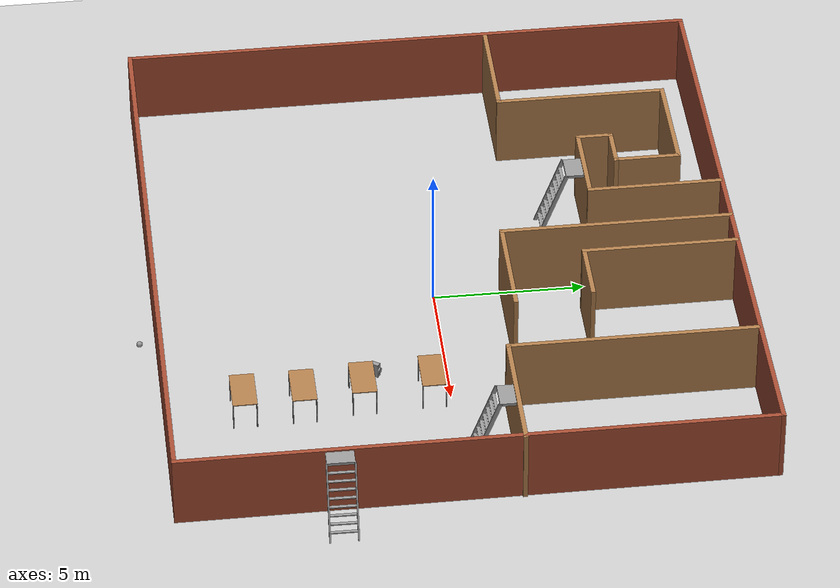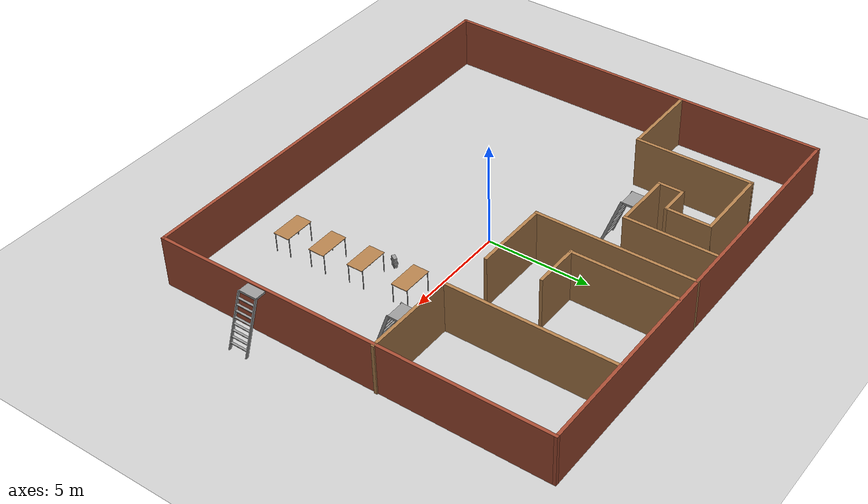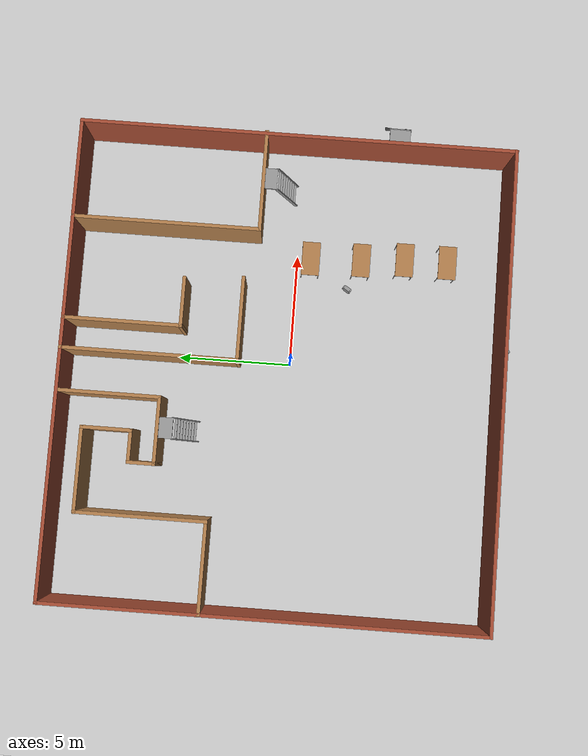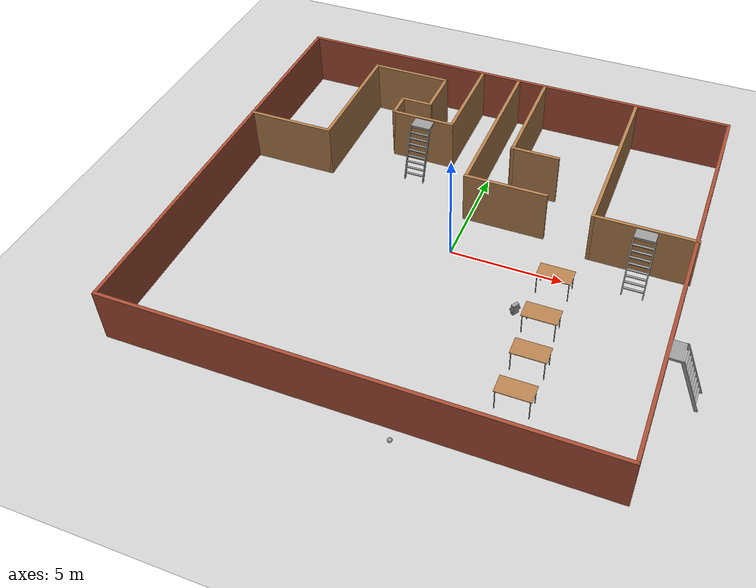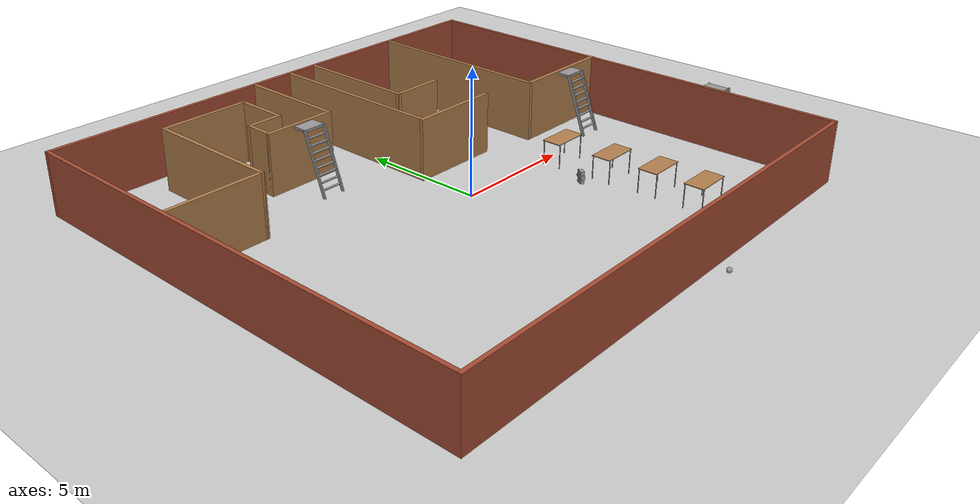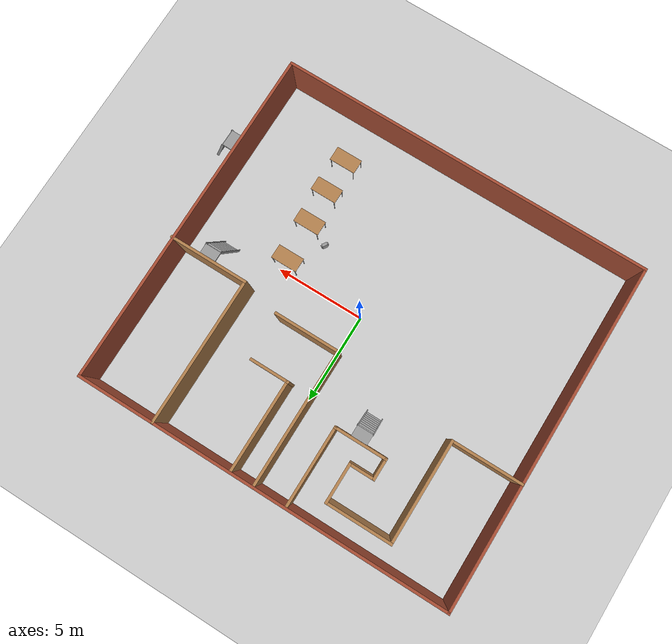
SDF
<sdf version="1.6">
 <world name="default">
  <light name="sun" type="directional">
   <pose>0 0 10 0 -0 0</pose>
   <diffuse>0.8 0.8 0.8 1</diffuse>
   <specular>0.2 0.2 0.2 1</specular>
   <attenuation>
    <range>1000</range>
    <constant>0.9</constant>
    <linear>0.01</linear>
    <quadratic>0.001</quadratic>
   </attenuation>
   <direction>-0.5 0.1 -0.9</direction>
  </light>
  <model name="ground_plane">
   <static>1</static>
   <link name="link">
    <collision name="collision">
     <geometry><plane><normal>0 0 1</normal><size>100 100</size></plane></geometry>
     <surface><friction><ode><mu>100</mu><mu2>50</mu2></ode></friction></surface>
    </collision>
    <visual name="visual">
     <cast_shadows>0</cast_shadows>
     <geometry><plane><normal>0 0 1</normal><size>100 100</size></plane></geometry>
     <material>
      <script><uri>file://media/materials/scripts/gazebo.material</uri><name>Gazebo/Grey</name></script>
     </material>
    </visual>
   </link>
  </model>
  <gravity>0 0 -9.8</gravity>
  <magnetic_field>6e-06 2.3e-05 -4.2e-05</magnetic_field>
  <atmosphere type="adiabatic"/>
  <physics name="default_physics" default="0" type="ode">
   <max_step_size>0.001</max_step_size>
   <real_time_factor>1</real_time_factor>
   <real_time_update_rate>1000</real_time_update_rate>
  </physics>
  <scene><ambient>0.4 0.4 0.4 1</ambient><background>0.7 0.7 0.7 1</background><shadows>1</shadows></scene>
  <audio><device>default</device></audio>
  <spherical_coordinates>
   <surface_model>EARTH_WGS84</surface_model>
   <latitude_deg>0</latitude_deg>
   <longitude_deg>0</longitude_deg>
   <elevation>0</elevation>
   <heading_deg>0</heading_deg>
  </spherical_coordinates>
  <model name="tiny_car">
   <link name="link_0">
    <inertial>
     <mass>1</mass>
     <inertia>
      <ixx>0.166667</ixx>
      <ixy>0</ixy>
      <ixz>0</ixz>
      <iyy>0.166667</iyy>
      <iyz>0</iyz>
      <izz>0.166667</izz>
     </inertia>
    </inertial>
    <pose>0.006667 1e-06 0 0 -0 0</pose>
    <visual name="visual">
     <geometry><box><size>0.5 0.3 0.16</size></box></geometry>
     <material>
      <lighting>1</lighting>
      <script><uri>file://media/materials/scripts/gazebo.material</uri><name>Gazebo/Grey</name></script>
      <shader type="vertex"><normal_map>__default__</normal_map></shader>
      <ambient>0.3 0.3 0.3 1</ambient>
      <diffuse>0.7 0.7 0.7 1</diffuse>
      <specular>0.01 0.01 0.01 1</specular>
      <emissive>0 0 0 1</emissive>
     </material>
    </visual>
    <collision name="collision">
     <geometry><box><size>0.5 0.3 0.16</size></box></geometry>
     <surface>
      <friction>
       <ode><mu>1</mu><mu2>1</mu2><fdir1>0 0 0</fdir1><slip1>0</slip1><slip2>0</slip2></ode>
       <torsional>
        <coefficient>1</coefficient>
        <patch_radius>0</patch_radius>
        <surface_radius>0</surface_radius>
        <use_patch_radius>1</use_patch_radius>
        <ode><slip>0</slip></ode>
       </torsional>
      </friction>
      <bounce><restitution_coefficient>0</restitution_coefficient><threshold>1e+06</threshold></bounce>
      <contact>
       <collide_without_contact>0</collide_without_contact>
       <collide_without_contact_bitmask>1</collide_without_contact_bitmask>
       <collide_bitmask>1</collide_bitmask>
       <ode>
        <soft_cfm>0</soft_cfm>
        <soft_erp>0.2</soft_erp>
        <kp>1e+13</kp>
        <kd>1</kd>
        <max_vel>0.01</max_vel>
        <min_depth>0</min_depth>
       </ode>
       <bullet>
        <split_impulse>1</split_impulse>
        <split_impulse_penetration_threshold>-0.01</split_impulse_penetration_threshold>
        <soft_cfm>0</soft_cfm>
        <soft_erp>0.2</soft_erp>
        <kp>1e+13</kp>
        <kd>1</kd>
       </bullet>
      </contact>
     </surface>
    </collision>
   </link>
   <link name="link_1">
    <inertial>
     <mass>1</mass>
     <inertia><ixx>0.145833</ixx><ixy>0</ixy><ixz>0</ixz><iyy>0.145833</iyy><iyz>0</iyz><izz>0.125</izz></inertia>
    </inertial>
    <pose>-0.013333 -0.175012 0 1.5707 -0 0</pose>
    <visual name="visual">
     <geometry><cylinder><radius>0.1</radius><length>0.05</length></cylinder></geometry>
     <material>
      <lighting>1</lighting>
      <script><uri>file://media/materials/scripts/gazebo.material</uri><name>Gazebo/Grey</name></script>
      <shader type="vertex"><normal_map>__default__</normal_map></shader>
      <ambient>0.3 0.3 0.3 1</ambient>
      <diffuse>0.7 0.7 0.7 1</diffuse>
      <specular>0.01 0.01 0.01 1</specular>
      <emissive>0 0 0 1</emissive>
     </material>
    </visual>
    <collision name="collision">
     <geometry><cylinder><radius>0.1</radius><length>0.05</length></cylinder></geometry>
     <surface>
      <friction>
       <ode><mu>1</mu><mu2>1</mu2><fdir1>0 0 0</fdir1><slip1>0</slip1><slip2>0</slip2></ode>
       <torsional>
        <coefficient>1</coefficient>
        <patch_radius>0</patch_radius>
        <surface_radius>0</surface_radius>
        <use_patch_radius>1</use_patch_radius>
        <ode><slip>0</slip></ode>
       </torsional>
      </friction>
      <bounce><restitution_coefficient>0</restitution_coefficient><threshold>1e+06</threshold></bounce>
      <contact>
       <collide_without_contact>0</collide_without_contact>
       <collide_without_contact_bitmask>1</collide_without_contact_bitmask>
       <collide_bitmask>1</collide_bitmask>
       <ode>
        <soft_cfm>0</soft_cfm>
        <soft_erp>0.2</soft_erp>
        <kp>1e+13</kp>
        <kd>1</kd>
        <max_vel>0.01</max_vel>
        <min_depth>0</min_depth>
       </ode>
       <bullet>
        <split_impulse>1</split_impulse>
        <split_impulse_penetration_threshold>-0.01</split_impulse_penetration_threshold>
        <soft_cfm>0</soft_cfm>
        <soft_erp>0.2</soft_erp>
        <kp>1e+13</kp>
        <kd>1</kd>
       </bullet>
      </contact>
     </surface>
    </collision>
   </link>
   <link name="link_1_clone">
    <inertial>
     <mass>1</mass>
     <inertia><ixx>0.145833</ixx><ixy>0</ixy><ixz>0</ixz><iyy>0.145833</iyy><iyz>0</iyz><izz>0.125</izz></inertia>
    </inertial>
    <pose>0.006667 0.175011 0 1.5707 -0 0</pose>
    <visual name="visual">
     <geometry><cylinder><radius>0.1</radius><length>0.05</length></cylinder></geometry>
     <material>
      <lighting>1</lighting>
      <script><uri>file://media/materials/scripts/gazebo.material</uri><name>Gazebo/Grey</name></script>
      <shader type="vertex"><normal_map>__default__</normal_map></shader>
      <ambient>0.3 0.3 0.3 1</ambient>
      <diffuse>0.7 0.7 0.7 1</diffuse>
      <specular>0.01 0.01 0.01 1</specular>
      <emissive>0 0 0 1</emissive>
     </material>
    </visual>
    <collision name="collision">
     <geometry><cylinder><radius>0.1</radius><length>0.05</length></cylinder></geometry>
     <surface>
      <friction>
       <ode><mu>1</mu><mu2>1</mu2><fdir1>0 0 0</fdir1><slip1>0</slip1><slip2>0</slip2></ode>
       <torsional>
        <coefficient>1</coefficient>
        <patch_radius>0</patch_radius>
        <surface_radius>0</surface_radius>
        <use_patch_radius>1</use_patch_radius>
        <ode><slip>0</slip></ode>
       </torsional>
      </friction>
      <bounce><restitution_coefficient>0</restitution_coefficient><threshold>1e+06</threshold></bounce>
      <contact>
       <collide_without_contact>0</collide_without_contact>
       <collide_without_contact_bitmask>1</collide_without_contact_bitmask>
       <collide_bitmask>1</collide_bitmask>
       <ode>
        <soft_cfm>0</soft_cfm>
        <soft_erp>0.2</soft_erp>
        <kp>1e+13</kp>
        <kd>1</kd>
        <max_vel>0.01</max_vel>
        <min_depth>0</min_depth>
       </ode>
       <bullet>
        <split_impulse>1</split_impulse>
        <split_impulse_penetration_threshold>-0.01</split_impulse_penetration_threshold>
        <soft_cfm>0</soft_cfm>
        <soft_erp>0.2</soft_erp>
        <kp>1e+13</kp>
        <kd>1</kd>
       </bullet>
      </contact>
     </surface>
    </collision>
   </link>
   <joint name="link_0_JOINT_1" type="revolute">
    <parent>link_0</parent>
    <child>link_1</child>
    <axis>
     <xyz>1 0 0</xyz>
     <use_parent_model_frame>0</use_parent_model_frame>
     <limit>
      <lower>-1.79769e+308</lower>
      <upper>1.79769e+308</upper>
      <effort>-1</effort>
      <velocity>-1</velocity>
     </limit>
     <dynamics>
      <spring_reference>0</spring_reference>
      <spring_stiffness>0</spring_stiffness>
      <damping>0</damping>
     </dynamics>
    </axis>
    <physics>
     <ode><limit><cfm>0</cfm><erp>0.2</erp></limit><suspension><cfm>0</cfm><erp>0.2</erp></suspension></ode>
    </physics>
   </joint>
   <joint name="link_0_JOINT_2" type="revolute">
    <parent>link_0</parent>
    <child>link_1_clone</child>
    <axis>
     <xyz>1 0 0</xyz>
     <use_parent_model_frame>0</use_parent_model_frame>
     <limit>
      <lower>-1.79769e+308</lower>
      <upper>1.79769e+308</upper>
      <effort>-1</effort>
      <velocity>-1</velocity>
     </limit>
     <dynamics>
      <spring_reference>0</spring_reference>
      <spring_stiffness>0</spring_stiffness>
      <damping>0</damping>
     </dynamics>
    </axis>
    <physics>
     <ode><limit><cfm>0</cfm><erp>0.2</erp></limit><suspension><cfm>0</cfm><erp>0.2</erp></suspension></ode>
    </physics>
   </joint>
   <static>0</static>
   <pose>3.65014 -2.32547 0.256667 1.48283 1.57079 0.922437</pose>
  </model>
  <model name="no-door-office">
   <pose>-0.50993 0.33776 0 0 -0 0</pose>
   <link name="Wall_10">
    <collision name="Wall_10_Collision">
     <geometry><box><size>3.75 0.15 2.5</size></box></geometry>
     <pose>0 0 1.25 0 -0 0</pose>
    </collision>
    <visual name="Wall_10_Visual">
     <pose>0 0 1.25 0 -0 0</pose>
     <geometry><box><size>3.75 0.15 2.5</size></box></geometry>
     <material>
      <script><uri>file://media/materials/scripts/gazebo.material</uri><name>Gazebo/Wood</name></script>
      <ambient>1 1 1 1</ambient>
     </material>
     <meta><layer>0</layer></meta>
    </visual>
    <pose>-4.7877 8.31382 0 0 -0 0</pose>
   </link>
   <link name="Wall_11">
    <collision name="Wall_11_Collision">
     <geometry><box><size>2.25 0.15 2.5</size></box></geometry>
     <pose>0 0 1.25 0 -0 0</pose>
    </collision>
    <visual name="Wall_11_Visual">
     <pose>0 0 1.25 0 -0 0</pose>
     <geometry><box><size>2.25 0.15 2.5</size></box></geometry>
     <material>
      <script><uri>file://media/materials/scripts/gazebo.material</uri><name>Gazebo/Wood</name></script>
      <ambient>1 1 1 1</ambient>
     </material>
     <meta><layer>0</layer></meta>
    </visual>
    <pose>-2.9877 7.26382 0 0 -0 -1.5708</pose>
   </link>
   <link name="Wall_12">
    <collision name="Wall_12_Collision">
     <geometry><box><size>1.5 0.15 2.5</size></box></geometry>
     <pose>0 0 1.25 0 -0 0</pose>
    </collision>
    <visual name="Wall_12_Visual">
     <pose>0 0 1.25 0 -0 0</pose>
     <geometry><box><size>1.5 0.15 2.5</size></box></geometry>
     <material>
      <script><uri>file://media/materials/scripts/gazebo.material</uri><name>Gazebo/Wood</name></script>
      <ambient>1 1 1 1</ambient>
     </material>
     <meta><layer>0</layer></meta>
    </visual>
    <pose>-3.6627 6.21382 0 0 -0 3.14159</pose>
   </link>
   <link name="Wall_13">
    <collision name="Wall_13_Collision">
     <geometry><box><size>1.25 0.15 2.5</size></box></geometry>
     <pose>0 0 1.25 0 -0 0</pose>
    </collision>
    <visual name="Wall_13_Visual">
     <pose>0 0 1.25 0 -0 0</pose>
     <geometry><box><size>1.25 0.15 2.5</size></box></geometry>
     <material>
      <script><uri>file://media/materials/scripts/gazebo.material</uri><name>Gazebo/Wood</name></script>
      <ambient>1 1 1 1</ambient>
     </material>
     <meta><layer>0</layer></meta>
    </visual>
    <pose>-4.3377 5.66382 0 0 -0 -1.5708</pose>
   </link>
   <link name="Wall_14">
    <collision name="Wall_14_Collision">
     <geometry><box><size>3 0.15 2.5</size></box></geometry>
     <pose>0 0 1.25 0 -0 0</pose>
    </collision>
    <visual name="Wall_14_Visual">
     <pose>0 0 1.25 0 -0 0</pose>
     <geometry><box><size>3 0.15 2.5</size></box></geometry>
     <material>
      <script><uri>file://media/materials/scripts/gazebo.material</uri><name>Gazebo/Wood</name></script>
      <ambient>1 1 1 1</ambient>
     </material>
     <meta><layer>0</layer></meta>
    </visual>
    <pose>-2.9127 5.11382 0 0 -0 0</pose>
   </link>
   <link name="Wall_15">
    <collision name="Wall_15_Collision">
     <geometry><box><size>4.5 0.15 2.5</size></box></geometry>
     <pose>0 0 1.25 0 -0 0</pose>
    </collision>
    <visual name="Wall_15_Visual">
     <pose>0 0 1.25 0 -0 0</pose>
     <geometry><box><size>4.5 0.15 2.5</size></box></geometry>
     <material>
      <script><uri>file://media/materials/scripts/gazebo.material</uri><name>Gazebo/Wood</name></script>
      <ambient>1 1 1 1</ambient>
     </material>
     <meta><layer>0</layer></meta>
    </visual>
    <pose>-1.4877 7.28882 0 0 -0 1.5708</pose>
   </link>
   <link name="Wall_17">
    <collision name="Wall_17_Collision">
     <geometry><box><size>7.75 0.15 2.5</size></box></geometry>
     <pose>0 0 1.25 0 -0 0</pose>
    </collision>
    <visual name="Wall_17_Visual">
     <pose>0 0 1.25 0 -0 0</pose>
     <geometry><box><size>7.75 0.15 2.5</size></box></geometry>
     <material>
      <script><uri>file://media/materials/scripts/gazebo.material</uri><name>Gazebo/Wood</name></script>
      <ambient>1 1 1 1</ambient>
     </material>
     <meta><layer>0</layer></meta>
    </visual>
    <pose>0.347156 5.75023 0 0 -0 -1.5708</pose>
   </link>
   <link name="Wall_18">
    <collision name="Wall_18_Collision">
     <geometry><box><size>3.75 0.15 2.5</size></box></geometry>
     <pose>0 0 1.25 0 -0 0</pose>
    </collision>
    <visual name="Wall_18_Visual">
     <pose>0 0 1.25 0 -0 0</pose>
     <geometry><box><size>3.75 0.15 2.5</size></box></geometry>
     <material>
      <script><uri>file://media/materials/scripts/gazebo.material</uri><name>Gazebo/Wood</name></script>
      <ambient>1 1 1 1</ambient>
     </material>
     <meta><layer>0</layer></meta>
    </visual>
    <pose>2.13846 1.94153 0 0 -0 0</pose>
   </link>
   <link name="Wall_20">
    <collision name="Wall_20_Collision">
     <geometry><box><size>2.25 0.15 2.5</size></box></geometry>
     <pose>0 0 1.25 0 -0 0</pose>
    </collision>
    <visual name="Wall_20_Visual">
     <pose>0 0 1.25 0 -0 0</pose>
     <geometry><box><size>2.25 0.15 2.5</size></box></geometry>
     <material>
      <script><uri>file://media/materials/scripts/gazebo.material</uri><name>Gazebo/Wood</name></script>
      <ambient>1 1 1 1</ambient>
     </material>
     <meta><layer>0</layer></meta>
    </visual>
    <pose>2.68176 4.48397 0 0 -0 3.14159</pose>
   </link>
   <link name="Wall_21">
    <collision name="Wall_21_Collision">
     <geometry><box><size>5.16191 0.15 2.5</size></box></geometry>
     <pose>0 0 1.25 0 -0 0</pose>
    </collision>
    <visual name="Wall_21_Visual">
     <pose>0 0 1.25 0 -0 0</pose>
     <geometry><box><size>5.16191 0.15 2.5</size></box></geometry>
     <material>
      <script><uri>file://media/materials/scripts/gazebo.material</uri><name>Gazebo/Wood</name></script>
      <ambient>1 1 1 1</ambient>
     </material>
     <meta><layer>0</layer></meta>
    </visual>
    <pose>1.65489 6.98992 0 0 -0 1.5708</pose>
   </link>
   <link name="Wall_23">
    <collision name="Wall_23_Collision">
     <geometry><box><size>8.25 0.15 2.5</size></box></geometry>
     <pose>0 0 1.25 0 -0 0</pose>
    </collision>
    <visual name="Wall_23_Visual">
     <pose>0 0 1.25 0 -0 0</pose>
     <geometry><box><size>8.25 0.15 2.5</size></box></geometry>
     <material>
      <script><uri>file://media/materials/scripts/gazebo.material</uri><name>Gazebo/Wood</name></script>
      <ambient>1 1 1 1</ambient>
     </material>
     <meta><layer>0</layer></meta>
    </visual>
    <pose>6.1082 5.46862 0 0 -0 -1.5708</pose>
   </link>
   <link name="Wall_24">
    <collision name="Wall_24_Collision">
     <geometry><box><size>4.5 0.15 2.5</size></box></geometry>
     <pose>0 0 1.25 0 -0 0</pose>
    </collision>
    <visual name="Wall_24_Visual">
     <pose>0 0 1.25 0 -0 0</pose>
     <geometry><box><size>4.5 0.15 2.5</size></box></geometry>
     <material>
      <script><uri>file://media/materials/scripts/gazebo.material</uri><name>Gazebo/Wood</name></script>
      <ambient>1 1 1 1</ambient>
     </material>
     <meta><layer>0</layer></meta>
    </visual>
    <pose>8.2832 1.41862 0 0 -0 0</pose>
   </link>
   <link name="Wall_3">
    <collision name="Wall_3_Collision">
     <geometry><box><size>19.25 0.15 2.5</size></box></geometry>
     <pose>0 0 1.25 0 -0 0</pose>
    </collision>
    <visual name="Wall_3_Visual">
     <pose>0 0 1.25 0 -0 0</pose>
     <geometry><box><size>19.25 0.15 2.5</size></box></geometry>
     <material>
      <script><uri>file://media/materials/scripts/gazebo.material</uri><name>Gazebo/Bricks</name></script>
      <ambient>1 1 1 1</ambient>
     </material>
     <meta><layer>0</layer></meta>
    </visual>
    <pose>-10.4582 -0.000226 0 0 -0 -1.5708</pose>
   </link>
   <link name="Wall_4">
    <collision name="Wall_4_Collision">
     <geometry><box><size>21 0.15 2.5</size></box></geometry>
     <pose>0 0 1.25 0 -0 0</pose>
    </collision>
    <visual name="Wall_4_Visual">
     <pose>0 0 1.25 0 -0 0</pose>
     <geometry><box><size>21 0.15 2.5</size></box></geometry>
     <material>
      <script><uri>file://media/materials/scripts/gazebo.material</uri><name>Gazebo/Bricks</name></script>
      <ambient>1 1 1 1</ambient>
     </material>
     <meta><layer>0</layer></meta>
    </visual>
    <pose>-0.033201 -9.55023 0 0 -0 0</pose>
   </link>
   <link name="Wall_5">
    <collision name="Wall_5_Collision">
     <geometry><box><size>19.25 0.15 2.5</size></box></geometry>
     <pose>0 0 1.25 0 -0 0</pose>
    </collision>
    <visual name="Wall_5_Visual">
     <pose>0 0 1.25 0 -0 0</pose>
     <geometry><box><size>19.25 0.15 2.5</size></box></geometry>
     <material>
      <script><uri>file://media/materials/scripts/gazebo.material</uri><name>Gazebo/Bricks</name></script>
      <ambient>1 1 1 1</ambient>
     </material>
     <meta><layer>0</layer></meta>
    </visual>
    <pose>10.3918 -0.000226 0 0 -0 1.5708</pose>
   </link>
   <link name="Wall_6">
    <collision name="Wall_6_Collision">
     <geometry><box><size>21 0.15 2.5</size></box></geometry>
     <pose>0 0 1.25 0 -0 0</pose>
    </collision>
    <visual name="Wall_6_Visual">
     <pose>0 0 1.25 0 -0 0</pose>
     <geometry><box><size>21 0.15 2.5</size></box></geometry>
     <material>
      <script><uri>file://media/materials/scripts/gazebo.material</uri><name>Gazebo/Bricks</name></script>
      <ambient>1 1 1 1</ambient>
     </material>
     <meta><layer>0</layer></meta>
    </visual>
    <pose>-0.033201 9.54977 0 0 -0 3.14159</pose>
   </link>
   <link name="Wall_8">
    <collision name="Wall_8_Collision">
     <geometry><box><size>4 0.15 2.5</size></box></geometry>
     <pose>0 0 1.25 0 -0 0</pose>
    </collision>
    <visual name="Wall_8_Visual">
     <pose>0 0 1.25 0 -0 0</pose>
     <geometry><box><size>4 0.15 2.5</size></box></geometry>
     <material>
      <script><uri>file://media/materials/scripts/gazebo.material</uri><name>Gazebo/Wood</name></script>
      <ambient>1 1 1 1</ambient>
     </material>
     <meta><layer>0</layer></meta>
    </visual>
    <pose>-8.5127 2.71382 0 0 -0 0</pose>
   </link>
   <link name="Wall_9">
    <collision name="Wall_9_Collision">
     <geometry><box><size>5.75 0.15 2.5</size></box></geometry>
     <pose>0 0 1.25 0 -0 0</pose>
    </collision>
    <visual name="Wall_9_Visual">
     <pose>0 0 1.25 0 -0 0</pose>
     <geometry><box><size>5.75 0.15 2.5</size></box></geometry>
     <material>
      <script><uri>file://media/materials/scripts/gazebo.material</uri><name>Gazebo/Wood</name></script>
      <ambient>1 1 1 1</ambient>
     </material>
     <meta><layer>0</layer></meta>
    </visual>
    <pose>-6.5877 5.51382 0 0 -0 1.5708</pose>
   </link>
   <static>1</static>
  </model>
  <model name="table">
   <static>1</static>
   <link name="link">
    <collision name="surface">
     <pose>0 0 1 0 -0 0</pose>
     <geometry><box><size>1.5 0.8 0.03</size></box></geometry>
     <surface><friction><ode><mu>0.6</mu><mu2>0.6</mu2></ode></friction></surface>
    </collision>
    <visual name="visual1">
     <pose>0 0 1 0 -0 0</pose>
     <geometry><box><size>1.5 0.8 0.03</size></box></geometry>
     <material>
      <script><uri>file://media/materials/scripts/gazebo.material</uri><name>Gazebo/Wood</name></script>
     </material>
    </visual>
    <collision name="front_left_leg">
     <pose>0.68 0.38 0.5 0 -0 0</pose>
     <geometry><cylinder><radius>0.02</radius><length>1</length></cylinder></geometry>
    </collision>
    <visual name="front_left_leg">
     <pose>0.68 0.38 0.5 0 -0 0</pose>
     <geometry><cylinder><radius>0.02</radius><length>1</length></cylinder></geometry>
     <material>
      <script><uri>file://media/materials/scripts/gazebo.material</uri><name>Gazebo/Grey</name></script>
     </material>
    </visual>
    <collision name="front_right_leg">
     <pose>0.68 -0.38 0.5 0 -0 0</pose>
     <geometry><cylinder><radius>0.02</radius><length>1</length></cylinder></geometry>
    </collision>
    <visual name="front_right_leg">
     <pose>0.68 -0.38 0.5 0 -0 0</pose>
     <geometry><cylinder><radius>0.02</radius><length>1</length></cylinder></geometry>
     <material>
      <script><uri>file://media/materials/scripts/gazebo.material</uri><name>Gazebo/Grey</name></script>
     </material>
    </visual>
    <collision name="back_right_leg">
     <pose>-0.68 -0.38 0.5 0 -0 0</pose>
     <geometry><cylinder><radius>0.02</radius><length>1</length></cylinder></geometry>
    </collision>
    <visual name="back_right_leg">
     <pose>-0.68 -0.38 0.5 0 -0 0</pose>
     <geometry><cylinder><radius>0.02</radius><length>1</length></cylinder></geometry>
     <material>
      <script><uri>file://media/materials/scripts/gazebo.material</uri><name>Gazebo/Grey</name></script>
     </material>
    </visual>
    <collision name="back_left_leg">
     <pose>-0.68 0.38 0.5 0 -0 0</pose>
     <geometry><cylinder><radius>0.02</radius><length>1</length></cylinder></geometry>
    </collision>
    <visual name="back_left_leg">
     <pose>-0.68 0.38 0.5 0 -0 0</pose>
     <geometry><cylinder><radius>0.02</radius><length>1</length></cylinder></geometry>
     <material>
      <script><uri>file://media/materials/scripts/gazebo.material</uri><name>Gazebo/Grey</name></script>
     </material>
    </visual>
   </link>
   <pose>4.78815 -0.5846 0 0 -0 0</pose>
  </model>
  <model name="table_clone">
   <static>1</static>
   <link name="link">
    <collision name="surface">
     <pose>0 0 1 0 -0 0</pose>
     <geometry><box><size>1.5 0.8 0.03</size></box></geometry>
     <surface><friction><ode><mu>0.6</mu><mu2>0.6</mu2></ode></friction></surface>
    </collision>
    <visual name="visual1">
     <pose>0 0 1 0 -0 0</pose>
     <geometry><box><size>1.5 0.8 0.03</size></box></geometry>
     <material>
      <script><uri>file://media/materials/scripts/gazebo.material</uri><name>Gazebo/Wood</name></script>
     </material>
    </visual>
    <collision name="front_left_leg">
     <pose>0.68 0.38 0.5 0 -0 0</pose>
     <geometry><cylinder><radius>0.02</radius><length>1</length></cylinder></geometry>
    </collision>
    <visual name="front_left_leg">
     <pose>0.68 0.38 0.5 0 -0 0</pose>
     <geometry><cylinder><radius>0.02</radius><length>1</length></cylinder></geometry>
     <material>
      <script><uri>file://media/materials/scripts/gazebo.material</uri><name>Gazebo/Grey</name></script>
     </material>
    </visual>
    <collision name="front_right_leg">
     <pose>0.68 -0.38 0.5 0 -0 0</pose>
     <geometry><cylinder><radius>0.02</radius><length>1</length></cylinder></geometry>
    </collision>
    <visual name="front_right_leg">
     <pose>0.68 -0.38 0.5 0 -0 0</pose>
     <geometry><cylinder><radius>0.02</radius><length>1</length></cylinder></geometry>
     <material>
      <script><uri>file://media/materials/scripts/gazebo.material</uri><name>Gazebo/Grey</name></script>
     </material>
    </visual>
    <collision name="back_right_leg">
     <pose>-0.68 -0.38 0.5 0 -0 0</pose>
     <geometry><cylinder><radius>0.02</radius><length>1</length></cylinder></geometry>
    </collision>
    <visual name="back_right_leg">
     <pose>-0.68 -0.38 0.5 0 -0 0</pose>
     <geometry><cylinder><radius>0.02</radius><length>1</length></cylinder></geometry>
     <material>
      <script><uri>file://media/materials/scripts/gazebo.material</uri><name>Gazebo/Grey</name></script>
     </material>
    </visual>
    <collision name="back_left_leg">
     <pose>-0.68 0.38 0.5 0 -0 0</pose>
     <geometry><cylinder><radius>0.02</radius><length>1</length></cylinder></geometry>
    </collision>
    <visual name="back_left_leg">
     <pose>-0.68 0.38 0.5 0 -0 0</pose>
     <geometry><cylinder><radius>0.02</radius><length>1</length></cylinder></geometry>
     <material>
      <script><uri>file://media/materials/scripts/gazebo.material</uri><name>Gazebo/Grey</name></script>
     </material>
    </visual>
   </link>
   <pose>4.87292 -2.84423 0 0 -0 0</pose>
  </model>
  <model name="table_clone_0">
   <static>1</static>
   <link name="link">
    <collision name="surface">
     <pose>0 0 1 0 -0 0</pose>
     <geometry><box><size>1.5 0.8 0.03</size></box></geometry>
     <surface><friction><ode><mu>0.6</mu><mu2>0.6</mu2></ode></friction></surface>
    </collision>
    <visual name="visual1">
     <pose>0 0 1 0 -0 0</pose>
     <geometry><box><size>1.5 0.8 0.03</size></box></geometry>
     <material>
      <script><uri>file://media/materials/scripts/gazebo.material</uri><name>Gazebo/Wood</name></script>
     </material>
    </visual>
    <collision name="front_left_leg">
     <pose>0.68 0.38 0.5 0 -0 0</pose>
     <geometry><cylinder><radius>0.02</radius><length>1</length></cylinder></geometry>
    </collision>
    <visual name="front_left_leg">
     <pose>0.68 0.38 0.5 0 -0 0</pose>
     <geometry><cylinder><radius>0.02</radius><length>1</length></cylinder></geometry>
     <material>
      <script><uri>file://media/materials/scripts/gazebo.material</uri><name>Gazebo/Grey</name></script>
     </material>
    </visual>
    <collision name="front_right_leg">
     <pose>0.68 -0.38 0.5 0 -0 0</pose>
     <geometry><cylinder><radius>0.02</radius><length>1</length></cylinder></geometry>
    </collision>
    <visual name="front_right_leg">
     <pose>0.68 -0.38 0.5 0 -0 0</pose>
     <geometry><cylinder><radius>0.02</radius><length>1</length></cylinder></geometry>
     <material>
      <script><uri>file://media/materials/scripts/gazebo.material</uri><name>Gazebo/Grey</name></script>
     </material>
    </visual>
    <collision name="back_right_leg">
     <pose>-0.68 -0.38 0.5 0 -0 0</pose>
     <geometry><cylinder><radius>0.02</radius><length>1</length></cylinder></geometry>
    </collision>
    <visual name="back_right_leg">
     <pose>-0.68 -0.38 0.5 0 -0 0</pose>
     <geometry><cylinder><radius>0.02</radius><length>1</length></cylinder></geometry>
     <material>
      <script><uri>file://media/materials/scripts/gazebo.material</uri><name>Gazebo/Grey</name></script>
     </material>
    </visual>
    <collision name="back_left_leg">
     <pose>-0.68 0.38 0.5 0 -0 0</pose>
     <geometry><cylinder><radius>0.02</radius><length>1</length></cylinder></geometry>
    </collision>
    <visual name="back_left_leg">
     <pose>-0.68 0.38 0.5 0 -0 0</pose>
     <geometry><cylinder><radius>0.02</radius><length>1</length></cylinder></geometry>
     <material>
      <script><uri>file://media/materials/scripts/gazebo.material</uri><name>Gazebo/Grey</name></script>
     </material>
    </visual>
   </link>
   <pose>5.02901 -4.78324 0 0 -0 0</pose>
  </model>
  <model name="table_clone_1">
   <static>1</static>
   <link name="link">
    <collision name="surface">
     <pose>0 0 1 0 -0 0</pose>
     <geometry><box><size>1.5 0.8 0.03</size></box></geometry>
     <surface><friction><ode><mu>0.6</mu><mu2>0.6</mu2></ode></friction></surface>
    </collision>
    <visual name="visual1">
     <pose>0 0 1 0 -0 0</pose>
     <geometry><box><size>1.5 0.8 0.03</size></box></geometry>
     <material>
      <script><uri>file://media/materials/scripts/gazebo.material</uri><name>Gazebo/Wood</name></script>
     </material>
    </visual>
    <collision name="front_left_leg">
     <pose>0.68 0.38 0.5 0 -0 0</pose>
     <geometry><cylinder><radius>0.02</radius><length>1</length></cylinder></geometry>
    </collision>
    <visual name="front_left_leg">
     <pose>0.68 0.38 0.5 0 -0 0</pose>
     <geometry><cylinder><radius>0.02</radius><length>1</length></cylinder></geometry>
     <material>
      <script><uri>file://media/materials/scripts/gazebo.material</uri><name>Gazebo/Grey</name></script>
     </material>
    </visual>
    <collision name="front_right_leg">
     <pose>0.68 -0.38 0.5 0 -0 0</pose>
     <geometry><cylinder><radius>0.02</radius><length>1</length></cylinder></geometry>
    </collision>
    <visual name="front_right_leg">
     <pose>0.68 -0.38 0.5 0 -0 0</pose>
     <geometry><cylinder><radius>0.02</radius><length>1</length></cylinder></geometry>
     <material>
      <script><uri>file://media/materials/scripts/gazebo.material</uri><name>Gazebo/Grey</name></script>
     </material>
    </visual>
    <collision name="back_right_leg">
     <pose>-0.68 -0.38 0.5 0 -0 0</pose>
     <geometry><cylinder><radius>0.02</radius><length>1</length></cylinder></geometry>
    </collision>
    <visual name="back_right_leg">
     <pose>-0.68 -0.38 0.5 0 -0 0</pose>
     <geometry><cylinder><radius>0.02</radius><length>1</length></cylinder></geometry>
     <material>
      <script><uri>file://media/materials/scripts/gazebo.material</uri><name>Gazebo/Grey</name></script>
     </material>
    </visual>
    <collision name="back_left_leg">
     <pose>-0.68 0.38 0.5 0 -0 0</pose>
     <geometry><cylinder><radius>0.02</radius><length>1</length></cylinder></geometry>
    </collision>
    <visual name="back_left_leg">
     <pose>-0.68 0.38 0.5 0 -0 0</pose>
     <geometry><cylinder><radius>0.02</radius><length>1</length></cylinder></geometry>
     <material>
      <script><uri>file://media/materials/scripts/gazebo.material</uri><name>Gazebo/Grey</name></script>
     </material>
    </visual>
   </link>
   <pose>5.0413 -6.6954 0 0 -0 0</pose>
  </model>
  <model name="ladder_70deg_0rails">
   <static>1</static>
   <link name="step0">
    <pose>0 0.097059 0.266667 0 -0 0</pose>
    <inertial>
     <mass>9.75482</mass>
     <inertia>
      <ixx>0.00957124</ixx>
      <iyy>0.65963</iyy>
      <izz>0.666842</izz>
      <ixy>0</ixy>
      <ixz>0</ixz>
      <iyz>0</iyz>
     </inertia>
    </inertial>
    <collision name="collision"><geometry><box><size>0.9 0.1016 0.0381</size></box></geometry></collision>
    <visual name="visual">
     <geometry><box><size>0.9 0.1016 0.0381</size></box></geometry>
     <material>
      <script><uri>file://media/materials/scripts/gazebo.material</uri><name>Gazebo/Grey</name></script>
     </material>
    </visual>
   </link>
   <link name="step1">
    <pose>0 0.194117 0.533333 0 -0 0</pose>
    <inertial>
     <mass>9.75482</mass>
     <inertia>
      <ixx>0.00957124</ixx>
      <iyy>0.65963</iyy>
      <izz>0.666842</izz>
      <ixy>0</ixy>
      <ixz>0</ixz>
      <iyz>0</iyz>
     </inertia>
    </inertial>
    <collision name="collision"><geometry><box><size>0.9 0.1016 0.0381</size></box></geometry></collision>
    <visual name="visual">
     <geometry><box><size>0.9 0.1016 0.0381</size></box></geometry>
     <material>
      <script><uri>file://media/materials/scripts/gazebo.material</uri><name>Gazebo/Grey</name></script>
     </material>
    </visual>
   </link>
   <link name="step2">
    <pose>0 0.291176 0.8 0 -0 0</pose>
    <inertial>
     <mass>9.75482</mass>
     <inertia>
      <ixx>0.00957124</ixx>
      <iyy>0.65963</iyy>
      <izz>0.666842</izz>
      <ixy>0</ixy>
      <ixz>0</ixz>
      <iyz>0</iyz>
     </inertia>
    </inertial>
    <collision name="collision"><geometry><box><size>0.9 0.1016 0.0381</size></box></geometry></collision>
    <visual name="visual">
     <geometry><box><size>0.9 0.1016 0.0381</size></box></geometry>
     <material>
      <script><uri>file://media/materials/scripts/gazebo.material</uri><name>Gazebo/Grey</name></script>
     </material>
    </visual>
   </link>
   <link name="step3">
    <pose>0 0.388235 1.06667 0 -0 0</pose>
    <inertial>
     <mass>9.75482</mass>
     <inertia>
      <ixx>0.00957124</ixx>
      <iyy>0.65963</iyy>
      <izz>0.666842</izz>
      <ixy>0</ixy>
      <ixz>0</ixz>
      <iyz>0</iyz>
     </inertia>
    </inertial>
    <collision name="collision"><geometry><box><size>0.9 0.1016 0.0381</size></box></geometry></collision>
    <visual name="visual">
     <geometry><box><size>0.9 0.1016 0.0381</size></box></geometry>
     <material>
      <script><uri>file://media/materials/scripts/gazebo.material</uri><name>Gazebo/Grey</name></script>
     </material>
    </visual>
   </link>
   <link name="step4">
    <pose>0 0.485294 1.33333 0 -0 0</pose>
    <inertial>
     <mass>9.75482</mass>
     <inertia>
      <ixx>0.00957124</ixx>
      <iyy>0.65963</iyy>
      <izz>0.666842</izz>
      <ixy>0</ixy>
      <ixz>0</ixz>
      <iyz>0</iyz>
     </inertia>
    </inertial>
    <collision name="collision"><geometry><box><size>0.9 0.1016 0.0381</size></box></geometry></collision>
    <visual name="visual">
     <geometry><box><size>0.9 0.1016 0.0381</size></box></geometry>
     <material>
      <script><uri>file://media/materials/scripts/gazebo.material</uri><name>Gazebo/Grey</name></script>
     </material>
    </visual>
   </link>
   <link name="step5">
    <pose>0 0.582352 1.6 0 -0 0</pose>
    <inertial>
     <mass>9.75482</mass>
     <inertia>
      <ixx>0.00957124</ixx>
      <iyy>0.65963</iyy>
      <izz>0.666842</izz>
      <ixy>0</ixy>
      <ixz>0</ixz>
      <iyz>0</iyz>
     </inertia>
    </inertial>
    <collision name="collision"><geometry><box><size>0.9 0.1016 0.0381</size></box></geometry></collision>
    <visual name="visual">
     <geometry><box><size>0.9 0.1016 0.0381</size></box></geometry>
     <material>
      <script><uri>file://media/materials/scripts/gazebo.material</uri><name>Gazebo/Grey</name></script>
     </material>
    </visual>
   </link>
   <link name="step6">
    <pose>0 0.679411 1.86667 0 -0 0</pose>
    <inertial>
     <mass>9.75482</mass>
     <inertia>
      <ixx>0.00957124</ixx>
      <iyy>0.65963</iyy>
      <izz>0.666842</izz>
      <ixy>0</ixy>
      <ixz>0</ixz>
      <iyz>0</iyz>
     </inertia>
    </inertial>
    <collision name="collision"><geometry><box><size>0.9 0.1016 0.0381</size></box></geometry></collision>
    <visual name="visual">
     <geometry><box><size>0.9 0.1016 0.0381</size></box></geometry>
     <material>
      <script><uri>file://media/materials/scripts/gazebo.material</uri><name>Gazebo/Grey</name></script>
     </material>
    </visual>
   </link>
   <link name="step7">
    <pose>0 0.77647 2.13333 0 -0 0</pose>
    <inertial>
     <mass>9.75482</mass>
     <inertia>
      <ixx>0.00957124</ixx>
      <iyy>0.65963</iyy>
      <izz>0.666842</izz>
      <ixy>0</ixy>
      <ixz>0</ixz>
      <iyz>0</iyz>
     </inertia>
    </inertial>
    <collision name="collision"><geometry><box><size>0.9 0.1016 0.0381</size></box></geometry></collision>
    <visual name="visual">
     <geometry><box><size>0.9 0.1016 0.0381</size></box></geometry>
     <material>
      <script><uri>file://media/materials/scripts/gazebo.material</uri><name>Gazebo/Grey</name></script>
     </material>
    </visual>
   </link>
   <link name="landing">
    <pose>0 1.17353 2.4 0 -0 0</pose>
    <inertial>
     <mass>57.6072</mass>
     <inertia><ixx>1.73518</ixx><iyy>3.89545</iyy><izz>5.6167</izz><ixy>0</ixy><ixz>0</ixz><iyz>0</iyz></inertia>
    </inertial>
    <collision name="collision"><geometry><box><size>0.9 0.6 0.1016</size></box></geometry></collision>
    <visual name="visual">
     <geometry><box><size>0.9 0.6 0.1016</size></box></geometry>
     <material>
      <script><uri>file://media/materials/scripts/gazebo.material</uri><name>Gazebo/Grey</name></script>
     </material>
    </visual>
   </link>
   <link name="left_side_wall">
    <pose>-0.45 0.436764 1.2 1.22173 -0 0</pose>
    <collision name="collision"><geometry><box><size>0.0508 2.63403 0.13</size></box></geometry></collision>
    <visual name="visual">
     <geometry><box><size>0.0508 2.63403 0.13</size></box></geometry>
     <material>
      <script><uri>file://media/materials/scripts/gazebo.material</uri><name>Gazebo/Grey</name></script>
     </material>
    </visual>
   </link>
   <link name="right_side_wall">
    <pose>0.45 0.436764 1.2 1.22173 -0 0</pose>
    <collision name="collision"><geometry><box><size>0.0508 2.63403 0.13</size></box></geometry></collision>
    <visual name="visual">
     <geometry><box><size>0.0508 2.63403 0.13</size></box></geometry>
     <material>
      <script><uri>file://media/materials/scripts/gazebo.material</uri><name>Gazebo/Grey</name></script>
     </material>
    </visual>
   </link>
   <pose>-3.28499 3.90586 0 0 -0 0</pose>
  </model>
  <model name="ladder_70deg_0rails_clone">
   <static>1</static>
   <link name="step0">
    <pose>0 0.097059 0.266667 0 -0 0</pose>
    <inertial>
     <mass>9.75482</mass>
     <inertia>
      <ixx>0.00957124</ixx>
      <iyy>0.65963</iyy>
      <izz>0.666842</izz>
      <ixy>0</ixy>
      <ixz>0</ixz>
      <iyz>0</iyz>
     </inertia>
    </inertial>
    <collision name="collision"><geometry><box><size>0.9 0.1016 0.0381</size></box></geometry></collision>
    <visual name="visual">
     <geometry><box><size>0.9 0.1016 0.0381</size></box></geometry>
     <material>
      <script><uri>file://media/materials/scripts/gazebo.material</uri><name>Gazebo/Grey</name></script>
     </material>
    </visual>
   </link>
   <link name="step1">
    <pose>0 0.194117 0.533333 0 -0 0</pose>
    <inertial>
     <mass>9.75482</mass>
     <inertia>
      <ixx>0.00957124</ixx>
      <iyy>0.65963</iyy>
      <izz>0.666842</izz>
      <ixy>0</ixy>
      <ixz>0</ixz>
      <iyz>0</iyz>
     </inertia>
    </inertial>
    <collision name="collision"><geometry><box><size>0.9 0.1016 0.0381</size></box></geometry></collision>
    <visual name="visual">
     <geometry><box><size>0.9 0.1016 0.0381</size></box></geometry>
     <material>
      <script><uri>file://media/materials/scripts/gazebo.material</uri><name>Gazebo/Grey</name></script>
     </material>
    </visual>
   </link>
   <link name="step2">
    <pose>0 0.291176 0.8 0 -0 0</pose>
    <inertial>
     <mass>9.75482</mass>
     <inertia>
      <ixx>0.00957124</ixx>
      <iyy>0.65963</iyy>
      <izz>0.666842</izz>
      <ixy>0</ixy>
      <ixz>0</ixz>
      <iyz>0</iyz>
     </inertia>
    </inertial>
    <collision name="collision"><geometry><box><size>0.9 0.1016 0.0381</size></box></geometry></collision>
    <visual name="visual">
     <geometry><box><size>0.9 0.1016 0.0381</size></box></geometry>
     <material>
      <script><uri>file://media/materials/scripts/gazebo.material</uri><name>Gazebo/Grey</name></script>
     </material>
    </visual>
   </link>
   <link name="step3">
    <pose>0 0.388235 1.06667 0 -0 0</pose>
    <inertial>
     <mass>9.75482</mass>
     <inertia>
      <ixx>0.00957124</ixx>
      <iyy>0.65963</iyy>
      <izz>0.666842</izz>
      <ixy>0</ixy>
      <ixz>0</ixz>
      <iyz>0</iyz>
     </inertia>
    </inertial>
    <collision name="collision"><geometry><box><size>0.9 0.1016 0.0381</size></box></geometry></collision>
    <visual name="visual">
     <geometry><box><size>0.9 0.1016 0.0381</size></box></geometry>
     <material>
      <script><uri>file://media/materials/scripts/gazebo.material</uri><name>Gazebo/Grey</name></script>
     </material>
    </visual>
   </link>
   <link name="step4">
    <pose>0 0.485294 1.33333 0 -0 0</pose>
    <inertial>
     <mass>9.75482</mass>
     <inertia>
      <ixx>0.00957124</ixx>
      <iyy>0.65963</iyy>
      <izz>0.666842</izz>
      <ixy>0</ixy>
      <ixz>0</ixz>
      <iyz>0</iyz>
     </inertia>
    </inertial>
    <collision name="collision"><geometry><box><size>0.9 0.1016 0.0381</size></box></geometry></collision>
    <visual name="visual">
     <geometry><box><size>0.9 0.1016 0.0381</size></box></geometry>
     <material>
      <script><uri>file://media/materials/scripts/gazebo.material</uri><name>Gazebo/Grey</name></script>
     </material>
    </visual>
   </link>
   <link name="step5">
    <pose>0 0.582352 1.6 0 -0 0</pose>
    <inertial>
     <mass>9.75482</mass>
     <inertia>
      <ixx>0.00957124</ixx>
      <iyy>0.65963</iyy>
      <izz>0.666842</izz>
      <ixy>0</ixy>
      <ixz>0</ixz>
      <iyz>0</iyz>
     </inertia>
    </inertial>
    <collision name="collision"><geometry><box><size>0.9 0.1016 0.0381</size></box></geometry></collision>
    <visual name="visual">
     <geometry><box><size>0.9 0.1016 0.0381</size></box></geometry>
     <material>
      <script><uri>file://media/materials/scripts/gazebo.material</uri><name>Gazebo/Grey</name></script>
     </material>
    </visual>
   </link>
   <link name="step6">
    <pose>0 0.679411 1.86667 0 -0 0</pose>
    <inertial>
     <mass>9.75482</mass>
     <inertia>
      <ixx>0.00957124</ixx>
      <iyy>0.65963</iyy>
      <izz>0.666842</izz>
      <ixy>0</ixy>
      <ixz>0</ixz>
      <iyz>0</iyz>
     </inertia>
    </inertial>
    <collision name="collision"><geometry><box><size>0.9 0.1016 0.0381</size></box></geometry></collision>
    <visual name="visual">
     <geometry><box><size>0.9 0.1016 0.0381</size></box></geometry>
     <material>
      <script><uri>file://media/materials/scripts/gazebo.material</uri><name>Gazebo/Grey</name></script>
     </material>
    </visual>
   </link>
   <link name="step7">
    <pose>0 0.77647 2.13333 0 -0 0</pose>
    <inertial>
     <mass>9.75482</mass>
     <inertia>
      <ixx>0.00957124</ixx>
      <iyy>0.65963</iyy>
      <izz>0.666842</izz>
      <ixy>0</ixy>
      <ixz>0</ixz>
      <iyz>0</iyz>
     </inertia>
    </inertial>
    <collision name="collision"><geometry><box><size>0.9 0.1016 0.0381</size></box></geometry></collision>
    <visual name="visual">
     <geometry><box><size>0.9 0.1016 0.0381</size></box></geometry>
     <material>
      <script><uri>file://media/materials/scripts/gazebo.material</uri><name>Gazebo/Grey</name></script>
     </material>
    </visual>
   </link>
   <link name="landing">
    <pose>0 1.17353 2.4 0 -0 0</pose>
    <inertial>
     <mass>57.6072</mass>
     <inertia><ixx>1.73518</ixx><iyy>3.89545</iyy><izz>5.6167</izz><ixy>0</ixy><ixz>0</ixz><iyz>0</iyz></inertia>
    </inertial>
    <collision name="collision"><geometry><box><size>0.9 0.6 0.1016</size></box></geometry></collision>
    <visual name="visual">
     <geometry><box><size>0.9 0.6 0.1016</size></box></geometry>
     <material>
      <script><uri>file://media/materials/scripts/gazebo.material</uri><name>Gazebo/Grey</name></script>
     </material>
    </visual>
   </link>
   <link name="left_side_wall">
    <pose>-0.45 0.436764 1.2 1.22173 -0 0</pose>
    <collision name="collision"><geometry><box><size>0.0508 2.63403 0.13</size></box></geometry></collision>
    <visual name="visual">
     <geometry><box><size>0.0508 2.63403 0.13</size></box></geometry>
     <material>
      <script><uri>file://media/materials/scripts/gazebo.material</uri><name>Gazebo/Grey</name></script>
     </material>
    </visual>
   </link>
   <link name="right_side_wall">
    <pose>0.45 0.436764 1.2 1.22173 -0 0</pose>
    <collision name="collision"><geometry><box><size>0.0508 2.63403 0.13</size></box></geometry></collision>
    <visual name="visual">
     <geometry><box><size>0.0508 2.63403 0.13</size></box></geometry>
     <material>
      <script><uri>file://media/materials/scripts/gazebo.material</uri><name>Gazebo/Grey</name></script>
     </material>
    </visual>
   </link>
   <pose>7.88326 0.272475 0 0 -0 0</pose>
  </model>
  <model name="ladder_70deg_0rails_clone_clone">
   <static>1</static>
   <link name="step0">
    <pose>0 0.097059 0.266667 0 -0 0</pose>
    <inertial>
     <mass>9.75482</mass>
     <inertia>
      <ixx>0.00957124</ixx>
      <iyy>0.65963</iyy>
      <izz>0.666842</izz>
      <ixy>0</ixy>
      <ixz>0</ixz>
      <iyz>0</iyz>
     </inertia>
    </inertial>
    <collision name="collision"><geometry><box><size>0.9 0.1016 0.0381</size></box></geometry></collision>
    <visual name="visual">
     <geometry><box><size>0.9 0.1016 0.0381</size></box></geometry>
     <material>
      <script><uri>file://media/materials/scripts/gazebo.material</uri><name>Gazebo/Grey</name></script>
     </material>
    </visual>
   </link>
   <link name="step1">
    <pose>0 0.194117 0.533333 0 -0 0</pose>
    <inertial>
     <mass>9.75482</mass>
     <inertia>
      <ixx>0.00957124</ixx>
      <iyy>0.65963</iyy>
      <izz>0.666842</izz>
      <ixy>0</ixy>
      <ixz>0</ixz>
      <iyz>0</iyz>
     </inertia>
    </inertial>
    <collision name="collision"><geometry><box><size>0.9 0.1016 0.0381</size></box></geometry></collision>
    <visual name="visual">
     <geometry><box><size>0.9 0.1016 0.0381</size></box></geometry>
     <material>
      <script><uri>file://media/materials/scripts/gazebo.material</uri><name>Gazebo/Grey</name></script>
     </material>
    </visual>
   </link>
   <link name="step2">
    <pose>0 0.291176 0.8 0 -0 0</pose>
    <inertial>
     <mass>9.75482</mass>
     <inertia>
      <ixx>0.00957124</ixx>
      <iyy>0.65963</iyy>
      <izz>0.666842</izz>
      <ixy>0</ixy>
      <ixz>0</ixz>
      <iyz>0</iyz>
     </inertia>
    </inertial>
    <collision name="collision"><geometry><box><size>0.9 0.1016 0.0381</size></box></geometry></collision>
    <visual name="visual">
     <geometry><box><size>0.9 0.1016 0.0381</size></box></geometry>
     <material>
      <script><uri>file://media/materials/scripts/gazebo.material</uri><name>Gazebo/Grey</name></script>
     </material>
    </visual>
   </link>
   <link name="step3">
    <pose>0 0.388235 1.06667 0 -0 0</pose>
    <inertial>
     <mass>9.75482</mass>
     <inertia>
      <ixx>0.00957124</ixx>
      <iyy>0.65963</iyy>
      <izz>0.666842</izz>
      <ixy>0</ixy>
      <ixz>0</ixz>
      <iyz>0</iyz>
     </inertia>
    </inertial>
    <collision name="collision"><geometry><box><size>0.9 0.1016 0.0381</size></box></geometry></collision>
    <visual name="visual">
     <geometry><box><size>0.9 0.1016 0.0381</size></box></geometry>
     <material>
      <script><uri>file://media/materials/scripts/gazebo.material</uri><name>Gazebo/Grey</name></script>
     </material>
    </visual>
   </link>
   <link name="step4">
    <pose>0 0.485294 1.33333 0 -0 0</pose>
    <inertial>
     <mass>9.75482</mass>
     <inertia>
      <ixx>0.00957124</ixx>
      <iyy>0.65963</iyy>
      <izz>0.666842</izz>
      <ixy>0</ixy>
      <ixz>0</ixz>
      <iyz>0</iyz>
     </inertia>
    </inertial>
    <collision name="collision"><geometry><box><size>0.9 0.1016 0.0381</size></box></geometry></collision>
    <visual name="visual">
     <geometry><box><size>0.9 0.1016 0.0381</size></box></geometry>
     <material>
      <script><uri>file://media/materials/scripts/gazebo.material</uri><name>Gazebo/Grey</name></script>
     </material>
    </visual>
   </link>
   <link name="step5">
    <pose>0 0.582352 1.6 0 -0 0</pose>
    <inertial>
     <mass>9.75482</mass>
     <inertia>
      <ixx>0.00957124</ixx>
      <iyy>0.65963</iyy>
      <izz>0.666842</izz>
      <ixy>0</ixy>
      <ixz>0</ixz>
      <iyz>0</iyz>
     </inertia>
    </inertial>
    <collision name="collision"><geometry><box><size>0.9 0.1016 0.0381</size></box></geometry></collision>
    <visual name="visual">
     <geometry><box><size>0.9 0.1016 0.0381</size></box></geometry>
     <material>
      <script><uri>file://media/materials/scripts/gazebo.material</uri><name>Gazebo/Grey</name></script>
     </material>
    </visual>
   </link>
   <link name="step6">
    <pose>0 0.679411 1.86667 0 -0 0</pose>
    <inertial>
     <mass>9.75482</mass>
     <inertia>
      <ixx>0.00957124</ixx>
      <iyy>0.65963</iyy>
      <izz>0.666842</izz>
      <ixy>0</ixy>
      <ixz>0</ixz>
      <iyz>0</iyz>
     </inertia>
    </inertial>
    <collision name="collision"><geometry><box><size>0.9 0.1016 0.0381</size></box></geometry></collision>
    <visual name="visual">
     <geometry><box><size>0.9 0.1016 0.0381</size></box></geometry>
     <material>
      <script><uri>file://media/materials/scripts/gazebo.material</uri><name>Gazebo/Grey</name></script>
     </material>
    </visual>
   </link>
   <link name="step7">
    <pose>0 0.77647 2.13333 0 -0 0</pose>
    <inertial>
     <mass>9.75482</mass>
     <inertia>
      <ixx>0.00957124</ixx>
      <iyy>0.65963</iyy>
      <izz>0.666842</izz>
      <ixy>0</ixy>
      <ixz>0</ixz>
      <iyz>0</iyz>
     </inertia>
    </inertial>
    <collision name="collision"><geometry><box><size>0.9 0.1016 0.0381</size></box></geometry></collision>
    <visual name="visual">
     <geometry><box><size>0.9 0.1016 0.0381</size></box></geometry>
     <material>
      <script><uri>file://media/materials/scripts/gazebo.material</uri><name>Gazebo/Grey</name></script>
     </material>
    </visual>
   </link>
   <link name="landing">
    <pose>0 1.17353 2.4 0 -0 0</pose>
    <inertial>
     <mass>57.6072</mass>
     <inertia><ixx>1.73518</ixx><iyy>3.89545</iyy><izz>5.6167</izz><ixy>0</ixy><ixz>0</ixz><iyz>0</iyz></inertia>
    </inertial>
    <collision name="collision"><geometry><box><size>0.9 0.6 0.1016</size></box></geometry></collision>
    <visual name="visual">
     <geometry><box><size>0.9 0.6 0.1016</size></box></geometry>
     <material>
      <script><uri>file://media/materials/scripts/gazebo.material</uri><name>Gazebo/Grey</name></script>
     </material>
    </visual>
   </link>
   <link name="left_side_wall">
    <pose>-0.45 0.436764 1.2 1.22173 -0 0</pose>
    <collision name="collision"><geometry><box><size>0.0508 2.63403 0.13</size></box></geometry></collision>
    <visual name="visual">
     <geometry><box><size>0.0508 2.63403 0.13</size></box></geometry>
     <material>
      <script><uri>file://media/materials/scripts/gazebo.material</uri><name>Gazebo/Grey</name></script>
     </material>
    </visual>
   </link>
   <link name="right_side_wall">
    <pose>0.45 0.436764 1.2 1.22173 -0 0</pose>
    <collision name="collision"><geometry><box><size>0.0508 2.63403 0.13</size></box></geometry></collision>
    <visual name="visual">
     <geometry><box><size>0.0508 2.63403 0.13</size></box></geometry>
     <material>
      <script><uri>file://media/materials/scripts/gazebo.material</uri><name>Gazebo/Grey</name></script>
     </material>
    </visual>
   </link>
   <pose>11.3605 -4.08919 0 0 -0 1.55803</pose>
  </model>
  <model name="white_ball">
   <link name="link_0">
    <inertial>
     <mass>1</mass>
     <inertia><ixx>0.1</ixx><ixy>0</ixy><ixz>0</ixz><iyy>0.1</iyy><iyz>0</iyz><izz>0.1</izz></inertia>
    </inertial>
    <visual name="visual">
     <geometry><sphere><radius>0.1</radius></sphere></geometry>
     <material>
      <lighting>1</lighting>
      <script><uri>file://media/materials/scripts/gazebo.material</uri><name>Gazebo/Grey</name></script>
      <shader type="vertex"><normal_map>__default__</normal_map></shader>
      <ambient>1 1 1 1</ambient>
      <diffuse>1 1 1 1</diffuse>
      <specular>1 1 1 1</specular>
      <emissive>1 1 1 1</emissive>
     </material>
    </visual>
    <collision name="collision">
     <geometry><sphere><radius>0.1</radius></sphere></geometry>
     <surface>
      <friction>
       <ode><mu>1</mu><mu2>1</mu2><fdir1>0 0 0</fdir1><slip1>0</slip1><slip2>0</slip2></ode>
       <torsional>
        <coefficient>1</coefficient>
        <patch_radius>0</patch_radius>
        <surface_radius>0</surface_radius>
        <use_patch_radius>1</use_patch_radius>
        <ode><slip>0</slip></ode>
       </torsional>
      </friction>
      <bounce><restitution_coefficient>0</restitution_coefficient><threshold>1e+06</threshold></bounce>
      <contact>
       <collide_without_contact>0</collide_without_contact>
       <collide_without_contact_bitmask>1</collide_without_contact_bitmask>
       <collide_bitmask>1</collide_bitmask>
       <ode>
        <soft_cfm>0</soft_cfm>
        <soft_erp>0.2</soft_erp>
        <kp>1e+13</kp>
        <kd>1</kd>
        <max_vel>0.01</max_vel>
        <min_depth>0</min_depth>
       </ode>
       <bullet>
        <split_impulse>1</split_impulse>
        <split_impulse_penetration_threshold>-0.01</split_impulse_penetration_threshold>
        <soft_cfm>0</soft_cfm>
        <soft_erp>0.2</soft_erp>
        <kp>1e+13</kp>
        <kd>1</kd>
       </bullet>
      </contact>
     </surface>
    </collision>
   </link>
   <static>0</static>
   <pose>1.35107 -9.79964 0.1 0 -0 0</pose>
  </model>
 </world>
</sdf>
